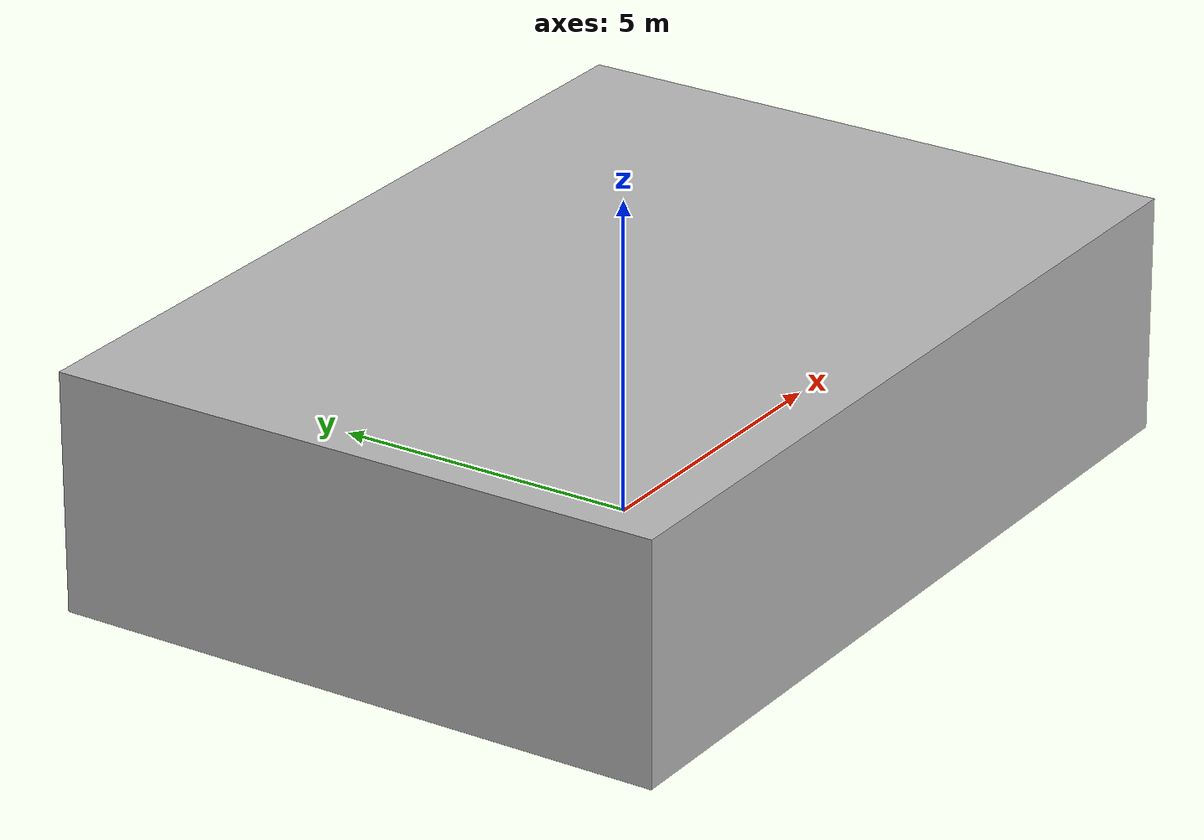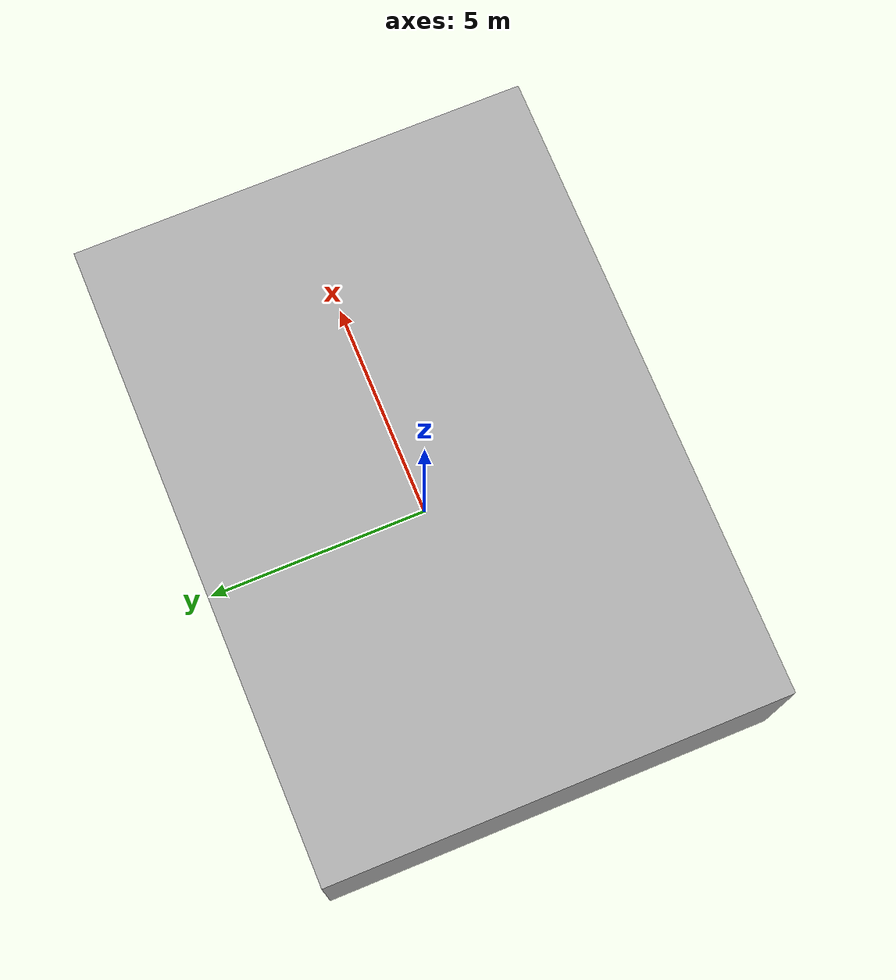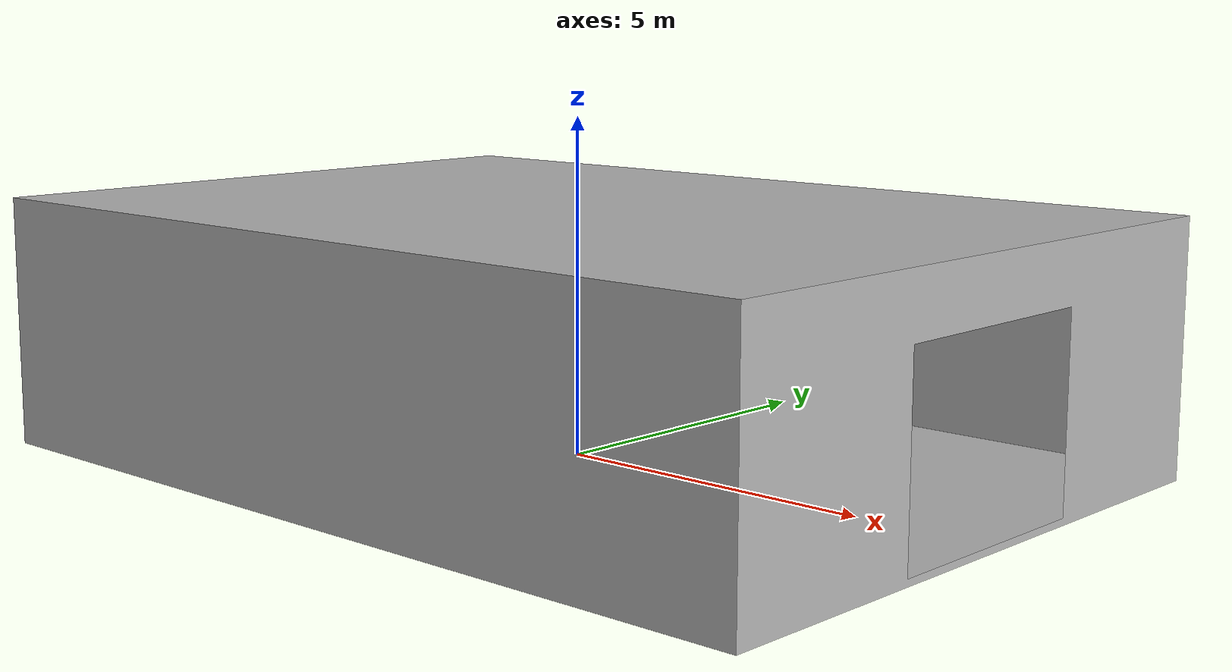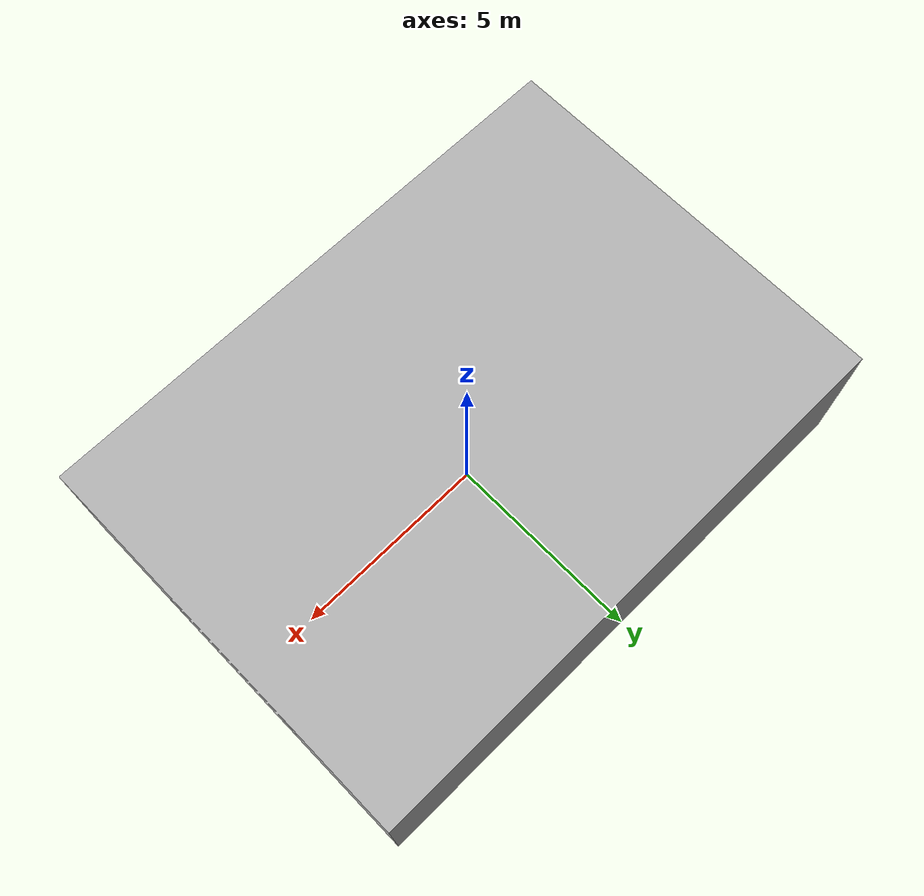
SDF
<?xml version='1.0' encoding='utf-8'?>
<sdf version="1.12">
  <model name="room_geometry">
    <static>true</static>
    <link name="room_geometry_body_link">
      <visual name="structure_visual">
        <geometry>
          <mesh>
            <uri>room_geometry_prison_block.obj</uri>
          </mesh>
        </geometry>
      </visual>
      <collision name="structure_collision">
        <geometry>
          <mesh>
            <uri>room_geometry_prison_block.obj</uri>
          </mesh>
        </geometry>
      </collision>
    </link>
  </model>
</sdf>
